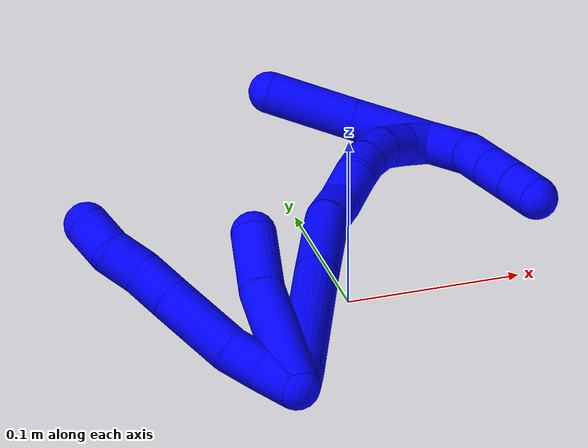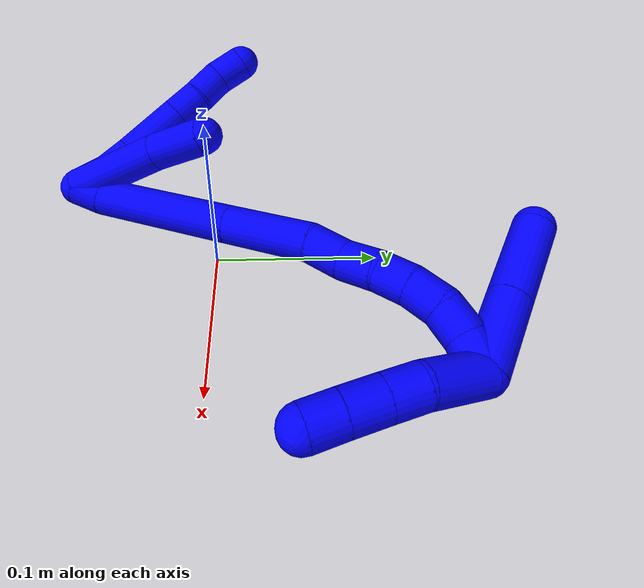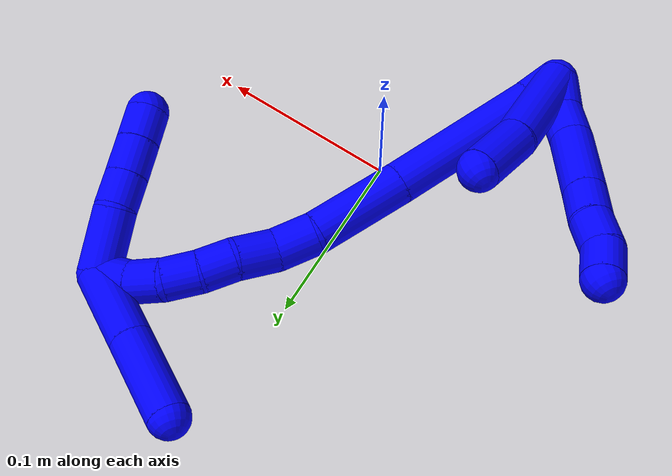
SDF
<sdf version="1.7">
 <world name="default">
  <model name="1">
   <static>0</static>
   <link name="1">
    <collision name="collision-cylinder-e_1_2_8">
     <pose>0.002054 0.002722 0.010445 -0.254967 0.188075 -0.024177</pose>
     <geometry><cylinder><radius>0.0125</radius><length>0.021976</length></cylinder></geometry>
     <surface>
      <friction><ode><mu>1.16</mu><mu2>1.16</mu2><slip1>0</slip1><slip2>0</slip2></ode></friction>
      <contact><ode><kp>1e+06</kp><kd>1</kd><max_vel>0</max_vel><min_depth>0.001</min_depth></ode></contact>
     </surface>
    </collision>
    <visual name="visual-cylinder-e_1_2_8">
     <pose>0.002054 0.002722 0.010445 -0.254967 0.188075 -0.024177</pose>
     <geometry><cylinder><radius>0.0125</radius><length>0.021976</length></cylinder></geometry>
     <material><ambient>0 0 1 1</ambient></material>
    </visual>
    <collision name="collision-cylinder-e_2_8_9">
     <pose>0.005904 0.005951 0.031348 -0.048331 0.169845 -0.004115</pose>
     <geometry><cylinder><radius>0.0125</radius><length>0.021245</length></cylinder></geometry>
     <surface>
      <friction><ode><mu>1.16</mu><mu2>1.16</mu2><slip1>0</slip1><slip2>0</slip2></ode></friction>
      <contact><ode><kp>1e+06</kp><kd>1</kd><max_vel>0</max_vel><min_depth>0.001</min_depth></ode></contact>
     </surface>
    </collision>
    <visual name="visual-cylinder-e_2_8_9">
     <pose>0.005904 0.005951 0.031348 -0.048331 0.169845 -0.004115</pose>
     <geometry><cylinder><radius>0.0125</radius><length>0.021245</length></cylinder></geometry>
     <material><ambient>0 0 1 1</ambient></material>
    </visual>
    <collision name="collision-cylinder-e_3_9_10">
     <pose>0.015096 0.006355 0.062318 0.00493 0.346066 0.000862</pose>
     <geometry><cylinder><radius>0.0125</radius><length>0.043612</length></cylinder></geometry>
     <surface>
      <friction><ode><mu>1.16</mu><mu2>1.16</mu2><slip1>0</slip1><slip2>0</slip2></ode></friction>
      <contact><ode><kp>1e+06</kp><kd>1</kd><max_vel>0</max_vel><min_depth>0.001</min_depth></ode></contact>
     </surface>
    </collision>
    <visual name="visual-cylinder-e_3_9_10">
     <pose>0.015096 0.006355 0.062318 0.00493 0.346066 0.000862</pose>
     <geometry><cylinder><radius>0.0125</radius><length>0.043612</length></cylinder></geometry>
     <material><ambient>0 0 1 1</ambient></material>
    </visual>
    <collision name="collision-cylinder-e_4_10_11">
     <pose>0.026235 0.006258 0.092764 -0.000386 0.36033 -7e-05</pose>
     <geometry><cylinder><radius>0.0125</radius><length>0.021229</length></cylinder></geometry>
     <surface>
      <friction><ode><mu>1.16</mu><mu2>1.16</mu2><slip1>0</slip1><slip2>0</slip2></ode></friction>
      <contact><ode><kp>1e+06</kp><kd>1</kd><max_vel>0</max_vel><min_depth>0.001</min_depth></ode></contact>
     </surface>
    </collision>
    <visual name="visual-cylinder-e_4_10_11">
     <pose>0.026235 0.006258 0.092764 -0.000386 0.36033 -7e-05</pose>
     <geometry><cylinder><radius>0.0125</radius><length>0.021229</length></cylinder></geometry>
     <material><ambient>0 0 1 1</ambient></material>
    </visual>
    <collision name="collision-cylinder-e_5_11_12">
     <pose>0.032241 0.005807 0.112907 0.044515 0.21787 0.004869</pose>
     <geometry><cylinder><radius>0.0125</radius><length>0.020936</length></cylinder></geometry>
     <surface>
      <friction><ode><mu>1.16</mu><mu2>1.16</mu2><slip1>0</slip1><slip2>0</slip2></ode></friction>
      <contact><ode><kp>1e+06</kp><kd>1</kd><max_vel>0</max_vel><min_depth>0.001</min_depth></ode></contact>
     </surface>
    </collision>
    <visual name="visual-cylinder-e_5_11_12">
     <pose>0.032241 0.005807 0.112907 0.044515 0.21787 0.004869</pose>
     <geometry><cylinder><radius>0.0125</radius><length>0.020936</length></cylinder></geometry>
     <material><ambient>0 0 1 1</ambient></material>
    </visual>
    <collision name="collision-cylinder-e_6_12_6">
     <pose>0.039496 0.006493 0.132285 -0.12384 0.495475 -0.031361</pose>
     <geometry><cylinder><radius>0.0125</radius><length>0.021002</length></cylinder></geometry>
     <surface>
      <friction><ode><mu>1.16</mu><mu2>1.16</mu2><slip1>0</slip1><slip2>0</slip2></ode></friction>
      <contact><ode><kp>1e+06</kp><kd>1</kd><max_vel>0</max_vel><min_depth>0.001</min_depth></ode></contact>
     </surface>
    </collision>
    <visual name="visual-cylinder-e_6_12_6">
     <pose>0.039496 0.006493 0.132285 -0.12384 0.495475 -0.031361</pose>
     <geometry><cylinder><radius>0.0125</radius><length>0.021002</length></cylinder></geometry>
     <material><ambient>0 0 1 1</ambient></material>
    </visual>
    <collision name="collision-cylinder-e_1_2_13">
     <pose>0.023275 0.005944 0.020161 -0.286705 0.836287 -0.128101</pose>
     <geometry><cylinder><radius>0.0125</radius><length>0.062723</length></cylinder></geometry>
     <surface>
      <friction><ode><mu>1.16</mu><mu2>1.16</mu2><slip1>0</slip1><slip2>0</slip2></ode></friction>
      <contact><ode><kp>1e+06</kp><kd>1</kd><max_vel>0</max_vel><min_depth>0.001</min_depth></ode></contact>
     </surface>
    </collision>
    <visual name="visual-cylinder-e_1_2_13">
     <pose>0.023275 0.005944 0.020161 -0.286705 0.836287 -0.128101</pose>
     <geometry><cylinder><radius>0.0125</radius><length>0.062723</length></cylinder></geometry>
     <material><ambient>0 0 1 1</ambient></material>
    </visual>
    <collision name="collision-cylinder-e_2_13_5">
     <pose>0.062104 0.016268 0.049613 -0.440566 0.987166 -0.239778</pose>
     <geometry><cylinder><radius>0.0125</radius><length>0.037277</length></cylinder></geometry>
     <surface>
      <friction><ode><mu>1.16</mu><mu2>1.16</mu2><slip1>0</slip1><slip2>0</slip2></ode></friction>
      <contact><ode><kp>1e+06</kp><kd>1</kd><max_vel>0</max_vel><min_depth>0.001</min_depth></ode></contact>
     </surface>
    </collision>
    <visual name="visual-cylinder-e_2_13_5">
     <pose>0.062104 0.016268 0.049613 -0.440566 0.987166 -0.239778</pose>
     <geometry><cylinder><radius>0.0125</radius><length>0.037277</length></cylinder></geometry>
     <material><ambient>0 0 1 1</ambient></material>
    </visual>
    <collision name="collision-cylinder-e_1_2_14">
     <pose>0.006472 0.0076 0.002009 -1.31233 0.688785 -0.538926</pose>
     <geometry><cylinder><radius>0.0125</radius><length>0.020365</length></cylinder></geometry>
     <surface>
      <friction><ode><mu>1.16</mu><mu2>1.16</mu2><slip1>0</slip1><slip2>0</slip2></ode></friction>
      <contact><ode><kp>1e+06</kp><kd>1</kd><max_vel>0</max_vel><min_depth>0.001</min_depth></ode></contact>
     </surface>
    </collision>
    <visual name="visual-cylinder-e_1_2_14">
     <pose>0.006472 0.0076 0.002009 -1.31233 0.688785 -0.538926</pose>
     <geometry><cylinder><radius>0.0125</radius><length>0.020365</length></cylinder></geometry>
     <material><ambient>0 0 1 1</ambient></material>
    </visual>
    <collision name="collision-cylinder-e_2_14_15">
     <pose>0.049305 0.043095 0.015709 -1.17394 0.876943 -0.604697</pose>
     <geometry><cylinder><radius>0.0125</radius><length>0.094593</length></cylinder></geometry>
     <surface>
      <friction><ode><mu>1.16</mu><mu2>1.16</mu2><slip1>0</slip1><slip2>0</slip2></ode></friction>
      <contact><ode><kp>1e+06</kp><kd>1</kd><max_vel>0</max_vel><min_depth>0.001</min_depth></ode></contact>
     </surface>
    </collision>
    <visual name="visual-cylinder-e_2_14_15">
     <pose>0.049305 0.043095 0.015709 -1.17394 0.876943 -0.604697</pose>
     <geometry><cylinder><radius>0.0125</radius><length>0.094593</length></cylinder></geometry>
     <material><ambient>0 0 1 1</ambient></material>
    </visual>
    <collision name="collision-cylinder-e_3_15_16">
     <pose>0.107653 0.087066 0.033964 -1.18315 0.902364 -0.629397</pose>
     <geometry><cylinder><radius>0.0125</radius><length>0.056034</length></cylinder></geometry>
     <surface>
      <friction><ode><mu>1.16</mu><mu2>1.16</mu2><slip1>0</slip1><slip2>0</slip2></ode></friction>
      <contact><ode><kp>1e+06</kp><kd>1</kd><max_vel>0</max_vel><min_depth>0.001</min_depth></ode></contact>
     </surface>
    </collision>
    <visual name="visual-cylinder-e_3_15_16">
     <pose>0.107653 0.087066 0.033964 -1.18315 0.902364 -0.629397</pose>
     <geometry><cylinder><radius>0.0125</radius><length>0.056034</length></cylinder></geometry>
     <material><ambient>0 0 1 1</ambient></material>
    </visual>
    <collision name="collision-cylinder-e_4_16_17">
     <pose>0.138603 0.111349 0.040673 -1.55312 0.8292 -0.816244</pose>
     <geometry><cylinder><radius>0.0125</radius><length>0.024307</length></cylinder></geometry>
     <surface>
      <friction><ode><mu>1.16</mu><mu2>1.16</mu2><slip1>0</slip1><slip2>0</slip2></ode></friction>
      <contact><ode><kp>1e+06</kp><kd>1</kd><max_vel>0</max_vel><min_depth>0.001</min_depth></ode></contact>
     </surface>
    </collision>
    <visual name="visual-cylinder-e_4_16_17">
     <pose>0.138603 0.111349 0.040673 -1.55312 0.8292 -0.816244</pose>
     <geometry><cylinder><radius>0.0125</radius><length>0.024307</length></cylinder></geometry>
     <material><ambient>0 0 1 1</ambient></material>
    </visual>
    <collision name="collision-cylinder-e_5_17_18">
     <pose>0.158575 0.12434 0.040845 -1.5651 1.16102 -1.1558</pose>
     <geometry><cylinder><radius>0.0125</radius><length>0.024009</length></cylinder></geometry>
     <surface>
      <friction><ode><mu>1.16</mu><mu2>1.16</mu2><slip1>0</slip1><slip2>0</slip2></ode></friction>
      <contact><ode><kp>1e+06</kp><kd>1</kd><max_vel>0</max_vel><min_depth>0.001</min_depth></ode></contact>
     </surface>
    </collision>
    <visual name="visual-cylinder-e_5_17_18">
     <pose>0.158575 0.12434 0.040845 -1.5651 1.16102 -1.1558</pose>
     <geometry><cylinder><radius>0.0125</radius><length>0.024009</length></cylinder></geometry>
     <material><ambient>0 0 1 1</ambient></material>
    </visual>
    <collision name="collision-cylinder-e_6_18_19">
     <pose>0.17763 0.135084 0.040935 -1.5602 0.932976 -0.924487</pose>
     <geometry><cylinder><radius>0.0125</radius><length>0.020025</length></cylinder></geometry>
     <surface>
      <friction><ode><mu>1.16</mu><mu2>1.16</mu2><slip1>0</slip1><slip2>0</slip2></ode></friction>
      <contact><ode><kp>1e+06</kp><kd>1</kd><max_vel>0</max_vel><min_depth>0.001</min_depth></ode></contact>
     </surface>
    </collision>
    <visual name="visual-cylinder-e_6_18_19">
     <pose>0.17763 0.135084 0.040935 -1.5602 0.932976 -0.924487</pose>
     <geometry><cylinder><radius>0.0125</radius><length>0.020025</length></cylinder></geometry>
     <material><ambient>0 0 1 1</ambient></material>
    </visual>
    <collision name="collision-cylinder-e_7_19_20">
     <pose>0.193518 0.147495 0.0393 -1.82828 0.866145 -1.08063</pose>
     <geometry><cylinder><radius>0.0125</radius><length>0.020592</length></cylinder></geometry>
     <surface>
      <friction><ode><mu>1.16</mu><mu2>1.16</mu2><slip1>0</slip1><slip2>0</slip2></ode></friction>
      <contact><ode><kp>1e+06</kp><kd>1</kd><max_vel>0</max_vel><min_depth>0.001</min_depth></ode></contact>
     </surface>
    </collision>
    <visual name="visual-cylinder-e_7_19_20">
     <pose>0.193518 0.147495 0.0393 -1.82828 0.866145 -1.08063</pose>
     <geometry><cylinder><radius>0.0125</radius><length>0.020592</length></cylinder></geometry>
     <material><ambient>0 0 1 1</ambient></material>
    </visual>
    <collision name="collision-cylinder-e_8_20_21">
     <pose>0.207212 0.160894 0.033403 -2.11431 0.624357 -1.03926</pose>
     <geometry><cylinder><radius>0.0125</radius><length>0.020015</length></cylinder></geometry>
     <surface>
      <friction><ode><mu>1.16</mu><mu2>1.16</mu2><slip1>0</slip1><slip2>0</slip2></ode></friction>
      <contact><ode><kp>1e+06</kp><kd>1</kd><max_vel>0</max_vel><min_depth>0.001</min_depth></ode></contact>
     </surface>
    </collision>
    <visual name="visual-cylinder-e_8_20_21">
     <pose>0.207212 0.160894 0.033403 -2.11431 0.624357 -1.03926</pose>
     <geometry><cylinder><radius>0.0125</radius><length>0.020015</length></cylinder></geometry>
     <material><ambient>0 0 1 1</ambient></material>
    </visual>
    <collision name="collision-cylinder-e_9_21_1">
     <pose>0.218787 0.173071 0.02284 -2.45389 0.607456 -1.43801</pose>
     <geometry><cylinder><radius>0.0125</radius><length>0.020061</length></cylinder></geometry>
     <surface>
      <friction><ode><mu>1.16</mu><mu2>1.16</mu2><slip1>0</slip1><slip2>0</slip2></ode></friction>
      <contact><ode><kp>1e+06</kp><kd>1</kd><max_vel>0</max_vel><min_depth>0.001</min_depth></ode></contact>
     </surface>
    </collision>
    <visual name="visual-cylinder-e_9_21_1">
     <pose>0.218787 0.173071 0.02284 -2.45389 0.607456 -1.43801</pose>
     <geometry><cylinder><radius>0.0125</radius><length>0.020061</length></cylinder></geometry>
     <material><ambient>0 0 1 1</ambient></material>
    </visual>
    <collision name="collision-cylinder-e_1_1_22">
     <pose>0.222292 0.176584 0.040041 0.072647 -0.093696 -0.003407</pose>
     <geometry><cylinder><radius>0.0125</radius><length>0.047463</length></cylinder></geometry>
     <surface>
      <friction><ode><mu>1.16</mu><mu2>1.16</mu2><slip1>0</slip1><slip2>0</slip2></ode></friction>
      <contact><ode><kp>1e+06</kp><kd>1</kd><max_vel>0</max_vel><min_depth>0.001</min_depth></ode></contact>
     </surface>
    </collision>
    <visual name="visual-cylinder-e_1_1_22">
     <pose>0.222292 0.176584 0.040041 0.072647 -0.093696 -0.003407</pose>
     <geometry><cylinder><radius>0.0125</radius><length>0.047463</length></cylinder></geometry>
     <material><ambient>0 0 1 1</ambient></material>
    </visual>
    <collision name="collision-cylinder-e_2_22_4">
     <pose>0.217973 0.17266 0.089697 0.084463 -0.079967 -0.003381</pose>
     <geometry><cylinder><radius>0.0125</radius><length>0.052537</length></cylinder></geometry>
     <surface>
      <friction><ode><mu>1.16</mu><mu2>1.16</mu2><slip1>0</slip1><slip2>0</slip2></ode></friction>
      <contact><ode><kp>1e+06</kp><kd>1</kd><max_vel>0</max_vel><min_depth>0.001</min_depth></ode></contact>
     </surface>
    </collision>
    <visual name="visual-cylinder-e_2_22_4">
     <pose>0.217973 0.17266 0.089697 0.084463 -0.079967 -0.003381</pose>
     <geometry><cylinder><radius>0.0125</radius><length>0.052537</length></cylinder></geometry>
     <material><ambient>0 0 1 1</ambient></material>
    </visual>
    <collision name="collision-cylinder-e_1_1_23">
     <pose>0.220732 0.166208 0.002647 2.42311 -0.202939 -0.529524</pose>
     <geometry><cylinder><radius>0.0125</radius><length>0.037509</length></cylinder></geometry>
     <surface>
      <friction><ode><mu>1.16</mu><mu2>1.16</mu2><slip1>0</slip1><slip2>0</slip2></ode></friction>
      <contact><ode><kp>1e+06</kp><kd>1</kd><max_vel>0</max_vel><min_depth>0.001</min_depth></ode></contact>
     </surface>
    </collision>
    <visual name="visual-cylinder-e_1_1_23">
     <pose>0.220732 0.166208 0.002647 2.42311 -0.202939 -0.529524</pose>
     <geometry><cylinder><radius>0.0125</radius><length>0.037509</length></cylinder></geometry>
     <material><ambient>0 0 1 1</ambient></material>
    </visual>
    <collision name="collision-cylinder-e_2_23_24">
     <pose>0.213208 0.149193 -0.019344 2.59892 -0.374296 -1.19529</pose>
     <geometry><cylinder><radius>0.0125</radius><length>0.020484</length></cylinder></geometry>
     <surface>
      <friction><ode><mu>1.16</mu><mu2>1.16</mu2><slip1>0</slip1><slip2>0</slip2></ode></friction>
      <contact><ode><kp>1e+06</kp><kd>1</kd><max_vel>0</max_vel><min_depth>0.001</min_depth></ode></contact>
     </surface>
    </collision>
    <visual name="visual-cylinder-e_2_23_24">
     <pose>0.213208 0.149193 -0.019344 2.59892 -0.374296 -1.19529</pose>
     <geometry><cylinder><radius>0.0125</radius><length>0.020484</length></cylinder></geometry>
     <material><ambient>0 0 1 1</ambient></material>
    </visual>
    <collision name="collision-cylinder-e_3_24_25">
     <pose>0.205513 0.139059 -0.036349 2.609 -0.367364 -1.19579</pose>
     <geometry><cylinder><radius>0.0125</radius><length>0.021993</length></cylinder></geometry>
     <surface>
      <friction><ode><mu>1.16</mu><mu2>1.16</mu2><slip1>0</slip1><slip2>0</slip2></ode></friction>
      <contact><ode><kp>1e+06</kp><kd>1</kd><max_vel>0</max_vel><min_depth>0.001</min_depth></ode></contact>
     </surface>
    </collision>
    <visual name="visual-cylinder-e_3_24_25">
     <pose>0.205513 0.139059 -0.036349 2.609 -0.367364 -1.19579</pose>
     <geometry><cylinder><radius>0.0125</radius><length>0.021993</length></cylinder></geometry>
     <material><ambient>0 0 1 1</ambient></material>
    </visual>
    <collision name="collision-cylinder-e_4_25_3">
     <pose>0.197932 0.129302 -0.053332 2.63233 -0.371466 -1.25056</pose>
     <geometry><cylinder><radius>0.0125</radius><length>0.020014</length></cylinder></geometry>
     <surface>
      <friction><ode><mu>1.16</mu><mu2>1.16</mu2><slip1>0</slip1><slip2>0</slip2></ode></friction>
      <contact><ode><kp>1e+06</kp><kd>1</kd><max_vel>0</max_vel><min_depth>0.001</min_depth></ode></contact>
     </surface>
    </collision>
    <visual name="visual-cylinder-e_4_25_3">
     <pose>0.197932 0.129302 -0.053332 2.63233 -0.371466 -1.25056</pose>
     <geometry><cylinder><radius>0.0125</radius><length>0.020014</length></cylinder></geometry>
     <material><ambient>0 0 1 1</ambient></material>
    </visual>
    <collision name="collision-sphere-3">
     <pose>0.194299 0.124756 -0.061473 0 -0 0</pose>
     <geometry><sphere><radius>0.0125</radius></sphere></geometry>
     <surface>
      <friction><ode><mu>1.16</mu><mu2>1.16</mu2><slip1>0</slip1><slip2>0</slip2></ode></friction>
      <contact><ode><kp>1e+06</kp><kd>1</kd><max_vel>0</max_vel><min_depth>0.001</min_depth></ode></contact>
     </surface>
    </collision>
    <visual name="visual-sphere-3">
     <pose>0.194299 0.124756 -0.061473 0 -0 0</pose>
     <geometry><sphere><radius>0.0125</radius></sphere></geometry>
     <material><ambient>0 0 1 1</ambient></material>
    </visual>
    <collision name="collision-sphere-25">
     <pose>0.201564 0.133848 -0.04519 0 -0 0</pose>
     <geometry><sphere><radius>0.0125</radius></sphere></geometry>
     <surface>
      <friction><ode><mu>1.16</mu><mu2>1.16</mu2><slip1>0</slip1><slip2>0</slip2></ode></friction>
      <contact><ode><kp>1e+06</kp><kd>1</kd><max_vel>0</max_vel><min_depth>0.001</min_depth></ode></contact>
     </surface>
    </collision>
    <visual name="visual-sphere-25">
     <pose>0.201564 0.133848 -0.04519 0 -0 0</pose>
     <geometry><sphere><radius>0.0125</radius></sphere></geometry>
     <material><ambient>0 0 1 1</ambient></material>
    </visual>
    <collision name="collision-sphere-24">
     <pose>0.209463 0.14427 -0.027508 0 -0 0</pose>
     <geometry><sphere><radius>0.0125</radius></sphere></geometry>
     <surface>
      <friction><ode><mu>1.16</mu><mu2>1.16</mu2><slip1>0</slip1><slip2>0</slip2></ode></friction>
      <contact><ode><kp>1e+06</kp><kd>1</kd><max_vel>0</max_vel><min_depth>0.001</min_depth></ode></contact>
     </surface>
    </collision>
    <visual name="visual-sphere-24">
     <pose>0.209463 0.14427 -0.027508 0 -0 0</pose>
     <geometry><sphere><radius>0.0125</radius></sphere></geometry>
     <material><ambient>0 0 1 1</ambient></material>
    </visual>
    <collision name="collision-sphere-23">
     <pose>0.216952 0.154116 -0.011181 0 -0 0</pose>
     <geometry><sphere><radius>0.0125</radius></sphere></geometry>
     <surface>
      <friction><ode><mu>1.16</mu><mu2>1.16</mu2><slip1>0</slip1><slip2>0</slip2></ode></friction>
      <contact><ode><kp>1e+06</kp><kd>1</kd><max_vel>0</max_vel><min_depth>0.001</min_depth></ode></contact>
     </surface>
    </collision>
    <visual name="visual-sphere-23">
     <pose>0.216952 0.154116 -0.011181 0 -0 0</pose>
     <geometry><sphere><radius>0.0125</radius></sphere></geometry>
     <material><ambient>0 0 1 1</ambient></material>
    </visual>
    <collision name="collision-sphere-4">
     <pose>0.215875 0.170451 0.115789 0 -0 0</pose>
     <geometry><sphere><radius>0.0125</radius></sphere></geometry>
     <surface>
      <friction><ode><mu>1.16</mu><mu2>1.16</mu2><slip1>0</slip1><slip2>0</slip2></ode></friction>
      <contact><ode><kp>1e+06</kp><kd>1</kd><max_vel>0</max_vel><min_depth>0.001</min_depth></ode></contact>
     </surface>
    </collision>
    <visual name="visual-sphere-4">
     <pose>0.215875 0.170451 0.115789 0 -0 0</pose>
     <geometry><sphere><radius>0.0125</radius></sphere></geometry>
     <material><ambient>0 0 1 1</ambient></material>
    </visual>
    <collision name="collision-sphere-22">
     <pose>0.220071 0.174869 0.063606 0 -0 0</pose>
     <geometry><sphere><radius>0.0125</radius></sphere></geometry>
     <surface>
      <friction><ode><mu>1.16</mu><mu2>1.16</mu2><slip1>0</slip1><slip2>0</slip2></ode></friction>
      <contact><ode><kp>1e+06</kp><kd>1</kd><max_vel>0</max_vel><min_depth>0.001</min_depth></ode></contact>
     </surface>
    </collision>
    <visual name="visual-sphere-22">
     <pose>0.220071 0.174869 0.063606 0 -0 0</pose>
     <geometry><sphere><radius>0.0125</radius></sphere></geometry>
     <material><ambient>0 0 1 1</ambient></material>
    </visual>
    <collision name="collision-sphere-1">
     <pose>0.224512 0.178299 0.016476 0 -0 0</pose>
     <geometry><sphere><radius>0.0125</radius></sphere></geometry>
     <surface>
      <friction><ode><mu>1.16</mu><mu2>1.16</mu2><slip1>0</slip1><slip2>0</slip2></ode></friction>
      <contact><ode><kp>1e+06</kp><kd>1</kd><max_vel>0</max_vel><min_depth>0.001</min_depth></ode></contact>
     </surface>
    </collision>
    <visual name="visual-sphere-1">
     <pose>0.224512 0.178299 0.016476 0 -0 0</pose>
     <geometry><sphere><radius>0.0125</radius></sphere></geometry>
     <material><ambient>0 0 1 1</ambient></material>
    </visual>
    <collision name="collision-sphere-21">
     <pose>0.213062 0.167844 0.029204 0 -0 0</pose>
     <geometry><sphere><radius>0.0125</radius></sphere></geometry>
     <surface>
      <friction><ode><mu>1.16</mu><mu2>1.16</mu2><slip1>0</slip1><slip2>0</slip2></ode></friction>
      <contact><ode><kp>1e+06</kp><kd>1</kd><max_vel>0</max_vel><min_depth>0.001</min_depth></ode></contact>
     </surface>
    </collision>
    <visual name="visual-sphere-21">
     <pose>0.213062 0.167844 0.029204 0 -0 0</pose>
     <geometry><sphere><radius>0.0125</radius></sphere></geometry>
     <material><ambient>0 0 1 1</ambient></material>
    </visual>
    <collision name="collision-sphere-12">
     <pose>0.034503 0.005352 0.123117 0 -0 0</pose>
     <geometry><sphere><radius>0.0125</radius></sphere></geometry>
     <surface>
      <friction><ode><mu>1.16</mu><mu2>1.16</mu2><slip1>0</slip1><slip2>0</slip2></ode></friction>
      <contact><ode><kp>1e+06</kp><kd>1</kd><max_vel>0</max_vel><min_depth>0.001</min_depth></ode></contact>
     </surface>
    </collision>
    <visual name="visual-sphere-12">
     <pose>0.034503 0.005352 0.123117 0 -0 0</pose>
     <geometry><sphere><radius>0.0125</radius></sphere></geometry>
     <material><ambient>0 0 1 1</ambient></material>
    </visual>
    <collision name="collision-sphere-11">
     <pose>0.029978 0.006262 0.102697 0 -0 0</pose>
     <geometry><sphere><radius>0.0125</radius></sphere></geometry>
     <surface>
      <friction><ode><mu>1.16</mu><mu2>1.16</mu2><slip1>0</slip1><slip2>0</slip2></ode></friction>
      <contact><ode><kp>1e+06</kp><kd>1</kd><max_vel>0</max_vel><min_depth>0.001</min_depth></ode></contact>
     </surface>
    </collision>
    <visual name="visual-sphere-11">
     <pose>0.029978 0.006262 0.102697 0 -0 0</pose>
     <geometry><sphere><radius>0.0125</radius></sphere></geometry>
     <material><ambient>0 0 1 1</ambient></material>
    </visual>
    <collision name="collision-sphere-10">
     <pose>0.022493 0.006254 0.082831 0 -0 0</pose>
     <geometry><sphere><radius>0.0125</radius></sphere></geometry>
     <surface>
      <friction><ode><mu>1.16</mu><mu2>1.16</mu2><slip1>0</slip1><slip2>0</slip2></ode></friction>
      <contact><ode><kp>1e+06</kp><kd>1</kd><max_vel>0</max_vel><min_depth>0.001</min_depth></ode></contact>
     </surface>
    </collision>
    <visual name="visual-sphere-10">
     <pose>0.022493 0.006254 0.082831 0 -0 0</pose>
     <geometry><sphere><radius>0.0125</radius></sphere></geometry>
     <material><ambient>0 0 1 1</ambient></material>
    </visual>
    <collision name="collision-sphere-9">
     <pose>0.0077 0.006457 0.041805 0 -0 0</pose>
     <geometry><sphere><radius>0.0125</radius></sphere></geometry>
     <surface>
      <friction><ode><mu>1.16</mu><mu2>1.16</mu2><slip1>0</slip1><slip2>0</slip2></ode></friction>
      <contact><ode><kp>1e+06</kp><kd>1</kd><max_vel>0</max_vel><min_depth>0.001</min_depth></ode></contact>
     </surface>
    </collision>
    <visual name="visual-sphere-9">
     <pose>0.0077 0.006457 0.041805 0 -0 0</pose>
     <geometry><sphere><radius>0.0125</radius></sphere></geometry>
     <material><ambient>0 0 1 1</ambient></material>
    </visual>
    <collision name="collision-sphere-2">
     <geometry><sphere><radius>0.0125</radius></sphere></geometry>
     <surface>
      <friction><ode><mu>1.16</mu><mu2>1.16</mu2><slip1>0</slip1><slip2>0</slip2></ode></friction>
      <contact><ode><kp>1e+06</kp><kd>1</kd><max_vel>0</max_vel><min_depth>0.001</min_depth></ode></contact>
     </surface>
    </collision>
    <visual name="visual-sphere-2">
     <geometry><sphere><radius>0.0125</radius></sphere></geometry>
     <material><ambient>0 0 1 1</ambient></material>
    </visual>
    <collision name="collision-sphere-19">
     <pose>0.185674 0.141046 0.040999 0 -0 0</pose>
     <geometry><sphere><radius>0.0125</radius></sphere></geometry>
     <surface>
      <friction><ode><mu>1.16</mu><mu2>1.16</mu2><slip1>0</slip1><slip2>0</slip2></ode></friction>
      <contact><ode><kp>1e+06</kp><kd>1</kd><max_vel>0</max_vel><min_depth>0.001</min_depth></ode></contact>
     </surface>
    </collision>
    <visual name="visual-sphere-19">
     <pose>0.185674 0.141046 0.040999 0 -0 0</pose>
     <geometry><sphere><radius>0.0125</radius></sphere></geometry>
     <material><ambient>0 0 1 1</ambient></material>
    </visual>
    <collision name="collision-sphere-8">
     <pose>0.004109 0.005445 0.020891 0 -0 0</pose>
     <geometry><sphere><radius>0.0125</radius></sphere></geometry>
     <surface>
      <friction><ode><mu>1.16</mu><mu2>1.16</mu2><slip1>0</slip1><slip2>0</slip2></ode></friction>
      <contact><ode><kp>1e+06</kp><kd>1</kd><max_vel>0</max_vel><min_depth>0.001</min_depth></ode></contact>
     </surface>
    </collision>
    <visual name="visual-sphere-8">
     <pose>0.004109 0.005445 0.020891 0 -0 0</pose>
     <geometry><sphere><radius>0.0125</radius></sphere></geometry>
     <material><ambient>0 0 1 1</ambient></material>
    </visual>
    <collision name="collision-sphere-6">
     <pose>0.044489 0.007635 0.141453 0 -0 0</pose>
     <geometry><sphere><radius>0.0125</radius></sphere></geometry>
     <surface>
      <friction><ode><mu>1.16</mu><mu2>1.16</mu2><slip1>0</slip1><slip2>0</slip2></ode></friction>
      <contact><ode><kp>1e+06</kp><kd>1</kd><max_vel>0</max_vel><min_depth>0.001</min_depth></ode></contact>
     </surface>
    </collision>
    <visual name="visual-sphere-6">
     <pose>0.044489 0.007635 0.141453 0 -0 0</pose>
     <geometry><sphere><radius>0.0125</radius></sphere></geometry>
     <material><ambient>0 0 1 1</ambient></material>
    </visual>
    <collision name="collision-sphere-13">
     <pose>0.046551 0.011888 0.040323 0 -0 0</pose>
     <geometry><sphere><radius>0.0125</radius></sphere></geometry>
     <surface>
      <friction><ode><mu>1.16</mu><mu2>1.16</mu2><slip1>0</slip1><slip2>0</slip2></ode></friction>
      <contact><ode><kp>1e+06</kp><kd>1</kd><max_vel>0</max_vel><min_depth>0.001</min_depth></ode></contact>
     </surface>
    </collision>
    <visual name="visual-sphere-13">
     <pose>0.046551 0.011888 0.040323 0 -0 0</pose>
     <geometry><sphere><radius>0.0125</radius></sphere></geometry>
     <material><ambient>0 0 1 1</ambient></material>
    </visual>
    <collision name="collision-sphere-5">
     <pose>0.077657 0.020648 0.058903 0 -0 0</pose>
     <geometry><sphere><radius>0.0125</radius></sphere></geometry>
     <surface>
      <friction><ode><mu>1.16</mu><mu2>1.16</mu2><slip1>0</slip1><slip2>0</slip2></ode></friction>
      <contact><ode><kp>1e+06</kp><kd>1</kd><max_vel>0</max_vel><min_depth>0.001</min_depth></ode></contact>
     </surface>
    </collision>
    <visual name="visual-sphere-5">
     <pose>0.077657 0.020648 0.058903 0 -0 0</pose>
     <geometry><sphere><radius>0.0125</radius></sphere></geometry>
     <material><ambient>0 0 1 1</ambient></material>
    </visual>
    <collision name="collision-sphere-14">
     <pose>0.012944 0.0152 0.004019 0 -0 0</pose>
     <geometry><sphere><radius>0.0125</radius></sphere></geometry>
     <surface>
      <friction><ode><mu>1.16</mu><mu2>1.16</mu2><slip1>0</slip1><slip2>0</slip2></ode></friction>
      <contact><ode><kp>1e+06</kp><kd>1</kd><max_vel>0</max_vel><min_depth>0.001</min_depth></ode></contact>
     </surface>
    </collision>
    <visual name="visual-sphere-14">
     <pose>0.012944 0.0152 0.004019 0 -0 0</pose>
     <geometry><sphere><radius>0.0125</radius></sphere></geometry>
     <material><ambient>0 0 1 1</ambient></material>
    </visual>
    <collision name="collision-sphere-15">
     <pose>0.085666 0.070991 0.0274 0 -0 0</pose>
     <geometry><sphere><radius>0.0125</radius></sphere></geometry>
     <surface>
      <friction><ode><mu>1.16</mu><mu2>1.16</mu2><slip1>0</slip1><slip2>0</slip2></ode></friction>
      <contact><ode><kp>1e+06</kp><kd>1</kd><max_vel>0</max_vel><min_depth>0.001</min_depth></ode></contact>
     </surface>
    </collision>
    <visual name="visual-sphere-15">
     <pose>0.085666 0.070991 0.0274 0 -0 0</pose>
     <geometry><sphere><radius>0.0125</radius></sphere></geometry>
     <material><ambient>0 0 1 1</ambient></material>
    </visual>
    <collision name="collision-sphere-16">
     <pose>0.129641 0.103142 0.040527 0 -0 0</pose>
     <geometry><sphere><radius>0.0125</radius></sphere></geometry>
     <surface>
      <friction><ode><mu>1.16</mu><mu2>1.16</mu2><slip1>0</slip1><slip2>0</slip2></ode></friction>
      <contact><ode><kp>1e+06</kp><kd>1</kd><max_vel>0</max_vel><min_depth>0.001</min_depth></ode></contact>
     </surface>
    </collision>
    <visual name="visual-sphere-16">
     <pose>0.129641 0.103142 0.040527 0 -0 0</pose>
     <geometry><sphere><radius>0.0125</radius></sphere></geometry>
     <material><ambient>0 0 1 1</ambient></material>
    </visual>
    <collision name="collision-sphere-17">
     <pose>0.147565 0.119557 0.040818 0 -0 0</pose>
     <geometry><sphere><radius>0.0125</radius></sphere></geometry>
     <surface>
      <friction><ode><mu>1.16</mu><mu2>1.16</mu2><slip1>0</slip1><slip2>0</slip2></ode></friction>
      <contact><ode><kp>1e+06</kp><kd>1</kd><max_vel>0</max_vel><min_depth>0.001</min_depth></ode></contact>
     </surface>
    </collision>
    <visual name="visual-sphere-17">
     <pose>0.147565 0.119557 0.040818 0 -0 0</pose>
     <geometry><sphere><radius>0.0125</radius></sphere></geometry>
     <material><ambient>0 0 1 1</ambient></material>
    </visual>
    <collision name="collision-sphere-18">
     <pose>0.169586 0.129123 0.040872 0 -0 0</pose>
     <geometry><sphere><radius>0.0125</radius></sphere></geometry>
     <surface>
      <friction><ode><mu>1.16</mu><mu2>1.16</mu2><slip1>0</slip1><slip2>0</slip2></ode></friction>
      <contact><ode><kp>1e+06</kp><kd>1</kd><max_vel>0</max_vel><min_depth>0.001</min_depth></ode></contact>
     </surface>
    </collision>
    <visual name="visual-sphere-18">
     <pose>0.169586 0.129123 0.040872 0 -0 0</pose>
     <geometry><sphere><radius>0.0125</radius></sphere></geometry>
     <material><ambient>0 0 1 1</ambient></material>
    </visual>
    <collision name="collision-sphere-20">
     <pose>0.201362 0.153945 0.037602 0 -0 0</pose>
     <geometry><sphere><radius>0.0125</radius></sphere></geometry>
     <surface>
      <friction><ode><mu>1.16</mu><mu2>1.16</mu2><slip1>0</slip1><slip2>0</slip2></ode></friction>
      <contact><ode><kp>1e+06</kp><kd>1</kd><max_vel>0</max_vel><min_depth>0.001</min_depth></ode></contact>
     </surface>
    </collision>
    <visual name="visual-sphere-20">
     <pose>0.201362 0.153945 0.037602 0 -0 0</pose>
     <geometry><sphere><radius>0.0125</radius></sphere></geometry>
     <material><ambient>0 0 1 1</ambient></material>
    </visual>
    <inertial>
     <pose>0.111837 0.081945 0.035257 0 -0 0</pose>
     <mass>0.75</mass>
     <inertia><ixx>9.2e-05</ixx><ixy>0</ixy><ixz>0</ixz><iyy>0.0001</iyy><iyz>0</iyz><izz>-0.000141</izz></inertia>
    </inertial>
   </link>
   <pose>-0.059813 -0.098654 0.014935 -1.29695 -0.629854 0.770077</pose>
  </model>
 </world>
</sdf>
